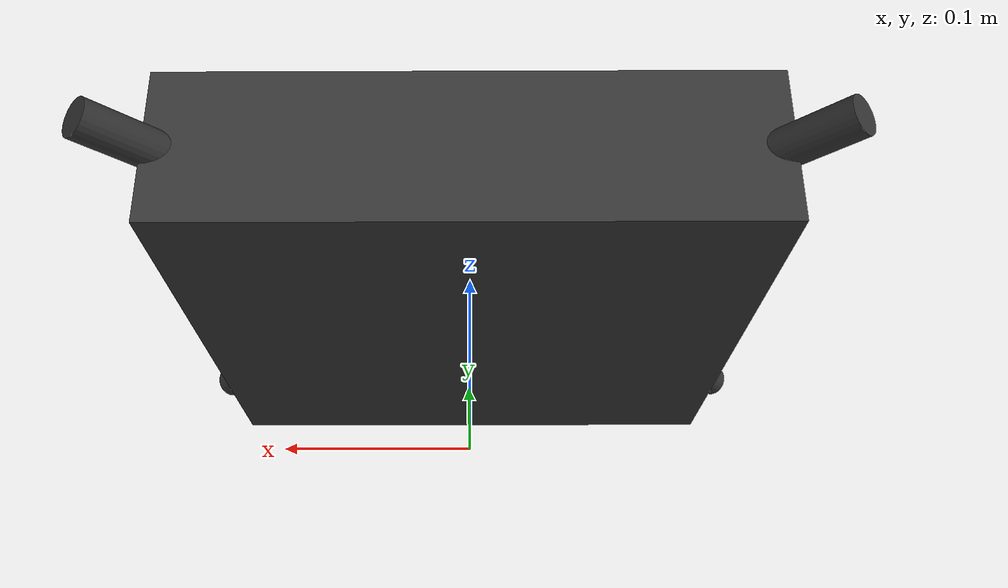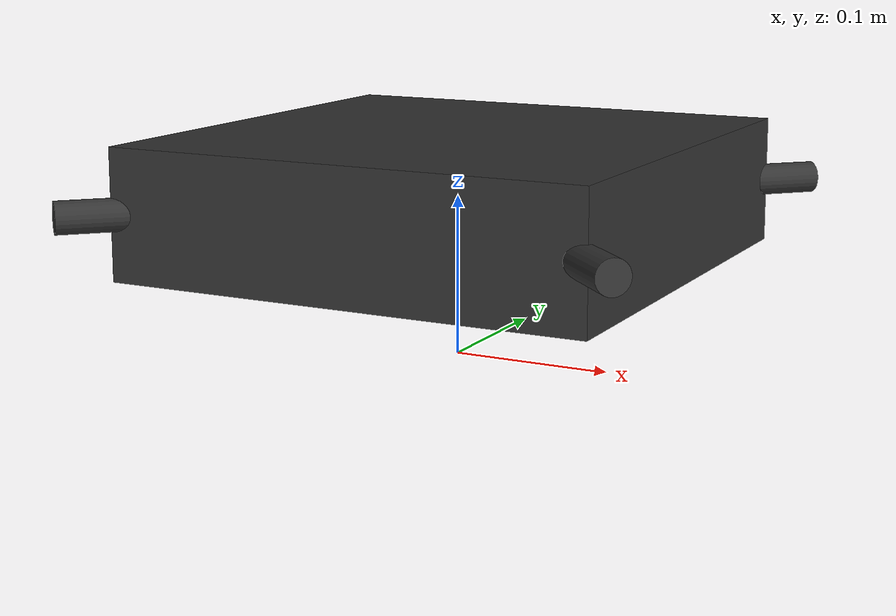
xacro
<?xml version="1.0"?>
<robot xmlns:xacro="http://www.ros.org/wiki/xacro">

  <!-- Materials -->
  <material name="dark_grey">
    <color rgba="0.2 0.2 0.2 1.0"/>
  </material>
  <material name="red">
    <color rgba="0.8 0.1 0.1 1.0"/>
  </material>

  <!-- Dummy root link for ROS 2 / KDL compliance -->
  <link name="base_footprint"/>

  <joint name="base_footprint_joint" type="fixed">
    <parent link="base_footprint"/>
    <child link="base_link"/>
    <origin xyz="0 0 0.1" rpy="0 0 0"/>
  </joint>

  <!-- Main Chassis Frame -->
  <link name="base_link">
    <visual>
      <geometry>
        <box size="0.30 0.30 0.08"/>
      </geometry>
      <material name="dark_grey"/>
    </visual>
    <collision>
      <geometry>
        <box size="0.30 0.30 0.08"/>
      </geometry>
    </collision>
    <inertial>
      <mass value="1.5"/>
      <origin xyz="0 0 0" rpy="0 0 0"/>
      <inertia ixx="0.012" ixy="0.0" ixz="0.0"
               iyy="0.012" iyz="0.0"
               izz="0.022"/>
    </inertial>
  </link>

  <!-- Arm Macro -->
  <xacro:macro name="rotor_arm" params="prefix x_mult y_mult">
    <link name="arm_${prefix}">
      <visual>
        <geometry>
          <cylinder length="0.15" radius="0.01"/>
        </geometry>
        <material name="dark_grey"/>
      </visual>
      <inertial>
        <mass value="0.05"/>
        <inertia ixx="0.0001" ixy="0" ixz="0" iyy="0.0001" iyz="0" izz="0.0001"/>
      </inertial>
    </link>

    <joint name="arm_${prefix}_joint" type="fixed">
      <parent link="base_link"/>
      <child link="arm_${prefix}"/>
      <origin xyz="${x_mult * 0.12} ${y_mult * 0.12} 0" rpy="0 1.5708 ${x_mult * y_mult * 0.7854}"/>
    </joint>
  </xacro:macro>

  <!-- Instantiate 4 Arms -->
  <xacro:rotor_arm prefix="front_right" x_mult="1" y_mult="-1"/>
  <xacro:rotor_arm prefix="front_left"  x_mult="1" y_mult="1"/>
  <xacro:rotor_arm prefix="back_right"  x_mult="-1" y_mult="-1"/>
  <xacro:rotor_arm prefix="back_left"   x_mult="-1" y_mult="1"/>

</robot>
